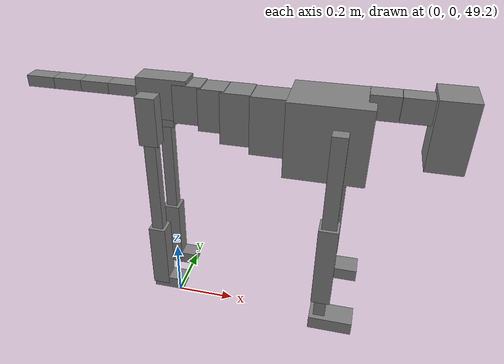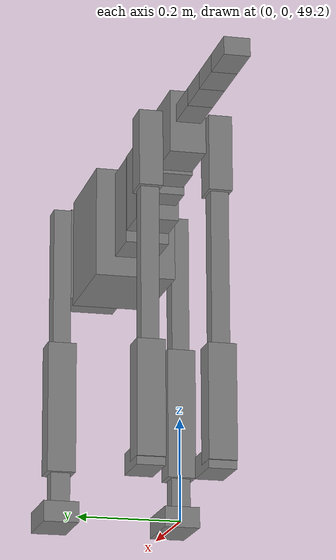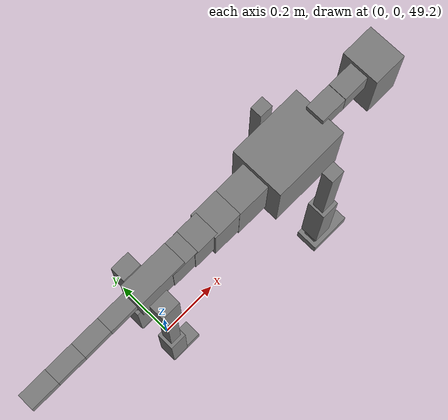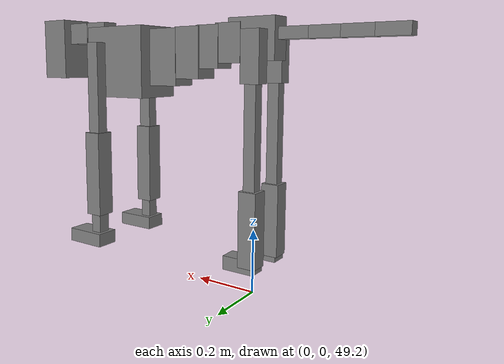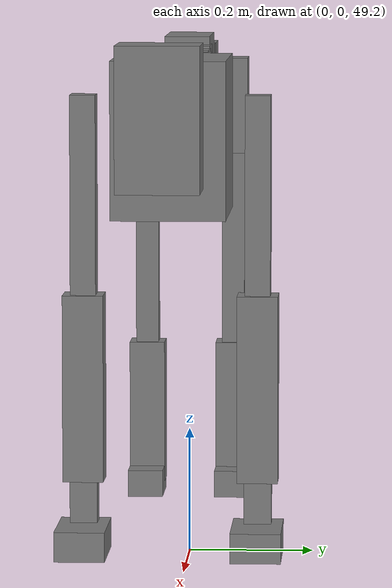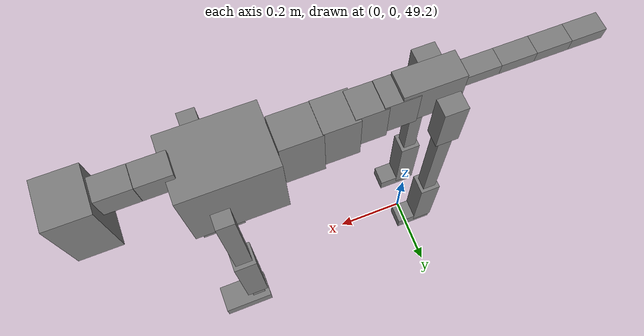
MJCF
<mujoco model="dog">

    <default>
        <joint armature="0.02" stiffness="1" damping="0.2" limited="true"/>
        <geom condim="3" friction="1 0.05 0.05" margin="0.01"/>
        <motor ctrllimited="true" ctrlrange="-1.0 1.0" forcelimited="true" gear="50"/>
    </default>

    <compiler inertiafromgeom="true" angle="radian"/>

    <option timestep="0.016" iterations="50" tolerance="1e-10" solver="Newton" jacobian="dense" cone="pyramidal"/>

    <size nconmax="20000" njmax="60000" nstack="5000000"/>
    <visual>
        <map force="0.1" zfar="30"/>
        <rgba haze="0.15 0.25 0.35 1"/>
        <quality shadowsize="2048"/>
        <global offwidth="800" offheight="800"/>
    </visual>

    <asset>
        <texture type="skybox" builtin="gradient" rgb1="0.3 0.5 0.7" rgb2="0 0 0" width="512" height="512"/>
        <texture name="texplane" type="2d" builtin="checker" rgb1=".2 .3 .4" rgb2=".1 0.15 0.2" width="512" height="512"
                 mark="cross" markrgb=".8 .8 .8"/>
        <texture name="texgeom" type="cube" builtin="flat" mark="cross" width="127" height="1278" rgb1="0.8 0.6 0.4"
                 rgb2="0.8 0.6 0.4" markrgb="1 1 1" random="0.01"/>

        <material name="matplane" reflectance="0.3" texture="texplane" texrepeat="1 1" texuniform="true"/>
        <material name="matgeom" texture="texgeom" texuniform="true" rgba="0.8 0.6 .4 1"/>
    </asset>

    <worldbody>
        <geom name="floor" pos="0 0 0" size="0 0 .25" type="plane" material="matplane" condim="3"/>

        <light directional="false" diffuse=".2 .2 .2" specular="0 0 0" pos="0 0 5" dir="0 0 -1" castshadow="false"/>
        <light mode="targetbodycom" target="torso" directional="false" diffuse=".8 .8 .8" specular="0.3 0.3 0.3"
               pos="0 0 4.0" dir="0 0 -1"/>

        <body name="root" pos="0 0 50">
            <freejoint name="root_1"/>
            <geom type="box" pos="0 0 -0.02" size="0.0774  0.0358  0.063" density="2030"/>

            <body name="spine1" pos="0.054 0 0">
                <joint name="spine1_y" axis="0 1 0" range="0 0.7" limited="true"/>
                <geom type="box" pos="0.02375 0 -0.03" size="0.04375  0.0375  0.05985" density="2030"/>

                <body name="spine2" pos="0.0612 0 0">
                    <joint name="spine2_y" axis="0 1 0" range="-0.15 0.15" limited="true"/>
                    <geom type="box" pos="0.03555  0  -0.04" size="0.04055  0.039  0.06615" density="2030"/>

                    <body name="spine3" pos="0.0730 0 0">
                        <joint name="spine3_y" axis="0 1 0" range="-0.15 0.15" limited="true"/>
                        <geom type="box" pos="0.03555  0  -0.057" size="0.04555  0.0445  0.081" density="2030"/>

                        <body name="spine4" pos="0.0780 0 0">
                            <joint name="spine4_y" axis="0 1 0" range="-0.15 0.15" limited="true"/>
                            <geom type="box" pos="0.05265  0  -0.07" size="0.05265  0.045  0.09135" density="2030"/>

                            <body name="torso" pos="0.1082 0 0">
                                <joint name="torso_y" axis="0 1 0" range="-0.15 0.15" limited="true"/>
                                <geom type="box" pos="0.11925  0  -0.085" size="0.11925  0.085  0.11745"
                                      density="2030"/>

                                <body name="neck1" pos="0.2160  0   0.0180">
                                    <joint name="neck1_y" axis="0 1 0" range="-1.2  -1" limited="true"/>
                                    <geom type="box" pos="0.0423  0  0" size="0.0423  0.03  0.036" density="2325"/>

                                    <body name="neck2" pos="0.0853  0  0">
                                        <joint name="neck2_y" axis="0 1 0" range="0.1  0" limited="true"/>
                                        <geom type="box" pos="0.0423  0  0" size="0.0423  0.03  0.036" density="2325"/>

                                        <body name="head" pos="0.0853  0  0">
                                            <joint name="head_y" axis="0 1 0" range="-0.3  -0.2" limited="true"/>
                                            <geom type="box" pos="0.0531  0  -0.055" size="0.0531  0.06  0.1044"
                                                  density="4030"/>

                                        </body>
                                    </body>
                                </body>

                                <body name="front_shoulder" pos="0.156  0   -0.0480">
                                    <joint name="front_shoulder_y" axis="0 1 0" range="-1 1.5" limited="true"/>
                                    <geom type="box" pos="0 0.13 -0.1355" size="0.0222  0.0190  0.1622" density="1158"/>
                                    <geom type="box" pos="0 -0.13 -0.1355" size="0.0222  0.0190  0.1622"
                                          density="1158"/>

                                    <body name="front_elbow" pos="0  0  -0.2710">
                                        <joint name="front_elbow_y" axis="0 1 0" range="-2 0" limited="true"/>
                                        <geom type="box" pos="0 0.13 -0.1400" size="0.0297  0.0304  0.1400"
                                              density="1081"/>
                                        <geom type="box" pos="0 -0.13 -0.1400" size="0.0297  0.0304  0.1400"
                                              density="1081"/>

                                        <body name="front_wrist" pos="0  0  -0.2799">
                                            <joint name="front_wrist_y" axis="0 1 0" range="-0.2 0" limited="true"/>
                                            <geom type="box" pos="0 0.13 -0.0390" size="0.0185  0.0206  0.0521"
                                                  density="1664"/>
                                            <geom type="box" pos="0 -0.13 -0.0390" size="0.0185  0.0206  0.0521"
                                                  density="1664"/>

                                            <body name="front_finger_end" pos="0  0  -0.0780">
                                                <joint name="front_finger_y" axis="0 1 0" range="-0.4 1"
                                                       limited="true"/>
                                                <geom type="box" pos="0.0376  0.13  -0.0072"
                                                      size="0.0690  0.0376  0.0222" density="1515"/>
                                                <geom type="box" pos="0.0376  -0.13  -0.0072"
                                                      size="0.0690  0.0376  0.0222" density="1515"/>

                                            </body>

                                        </body>
                                    </body>
                                </body>

                            </body>
                        </body>
                    </body>
                </body>
            </body>

            <body name="back_hip" pos="-0.03 0 -0.018">
                <joint name="back_hip_y" axis="0 1 0" range="-1.5 0.3" limited="true"/>
                <geom type="box" pos="0 0.07 -0.0541" size="0.0301  0.0236  0.0769" density="1154"/>
                <geom type="box" pos="0 -0.07 -0.0541" size="0.0301  0.0236  0.0769" density="1154"/>

                <body name="back_knee" pos="0  0  -0.1083">
                    <joint name="back_knee_y" axis="0 1 0" range="0 2.8" limited="true"/>
                    <geom type="box" pos="0 0.07 -0.1718" size="0.0184  0.0181  0.1873" density="1227"/>
                    <geom type="box" pos="0 -0.07 -0.1718" size="0.0184  0.0181  0.1873" density="1227"/>

                    <body name="back_ankle" pos="0  0  -0.3436">
                        <joint name="back_ankle_y" axis="0 1 0" range="-2.2 0" limited="true"/>
                        <geom type="box" pos="0 0.07 -0.1036" size="0.0282  0.0282  0.1149" density="1284"/>
                        <geom type="box" pos="0 -0.07 -0.1036" size="0.0282  0.0282  0.1149" density="1284"/>

                        <body name="back_toe_end" pos="0  0  -0.2073">
                            <joint name="back_toe_y" axis="0 1 0" range="-0.4 1" limited="true"/>
                            <geom type="box" pos="0.0280  0.07  -0.0063" size="0.0514  0.0280  0.0213" density="1515"/>
                            <geom type="box" pos="0.0280  -0.07  -0.0063" size="0.0514  0.0280  0.0213" density="1515"/>

                        </body>
                    </body>
                </body>
            </body>

            <body name="tail1" pos="-0.074 0 -0.006">
                <joint name="tail1_y" axis="0 1 0" range="-0.2 0.2" limited="true"/>
                <geom type="box" pos="-0.0536  0  0" size="0.045  0.025  0.0175" density="1587"/>

                <body name="tail2" pos="-0.09 0 0">
                    <joint name="tail2_y" axis="0 1 0" range="-0.2 0.2" limited="true"/>
                    <geom type="box" pos="-0.0536  0  0" size="0.045  0.025  0.0175" density="1587"/>

                    <body name="tail3" pos="-0.09 0 0">
                        <joint name="tail3_y" axis="0 1 0" range="-0.2 0.2" limited="true"/>
                        <geom type="box" pos="-0.0536  0  0" size="0.045  0.025  0.0175" density="1587"/>

                        <body name="tail4" pos="-0.09 0 0">
                            <joint name="tail4_y" axis="0 1 0" range="-0.2 0.2" limited="true"/>
                            <geom type="box" pos="-0.0536  0  0" size="0.045  0.025  0.0175" density="1587"/>

                        </body>
                    </body>
                </body>
            </body>
        </body>
    </worldbody>

    <actuator>
        <motor joint="spine1_y" forcerange="-150 150     "/>
        <motor joint="spine2_y" forcerange="-150 150     "/>
        <motor joint="spine3_y" forcerange="-150 150     "/>
        <motor joint="spine4_y" forcerange="-150 150     "/>
        <motor joint="torso_y" forcerange="-150 150     "/>
        <motor joint="neck1_y" forcerange="-100 100       "/>
        <motor joint="neck2_y" forcerange="-100 100       "/>
        <motor joint="head_y" forcerange="-150 150       "/>
        <motor joint="front_shoulder_y" forcerange="-103.53 123.09"/>
        <motor joint="front_elbow_y" forcerange="-178.78 141.96"/>
        <motor joint="front_wrist_y" forcerange="-97.98 66.48"/>
        <motor joint="front_finger_y" forcerange="-82.21 78.55"/>
        <motor joint="back_hip_y" forcerange="-293.38 221.91"/>
        <motor joint="back_knee_y" forcerange="-238.49 225.07"/>
        <motor joint="back_angle_y" forcerange="-161.54 189.02"/>
        <motor joint="back_toe_y" forcerange="-107.75 36.41"/>
        <motor joint="tail1_y" forcerange="-50 50     "/>
        <motor joint="tail2_y" forcerange="-50 50     "/>
        <motor joint="tail3_y" forcerange="-50 50     "/>
        <motor joint="tail4_y" forcerange="-50 50     "/>
    </actuator>
</mujoco>
